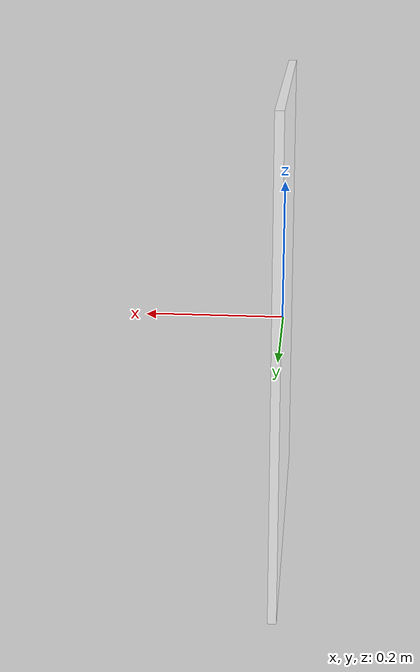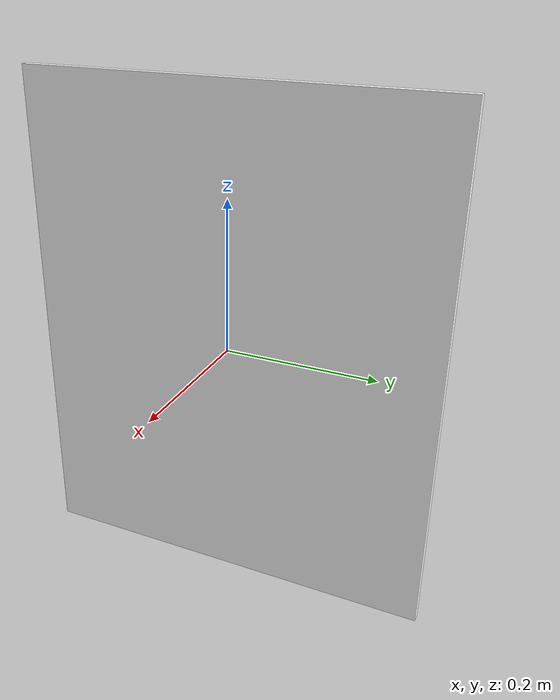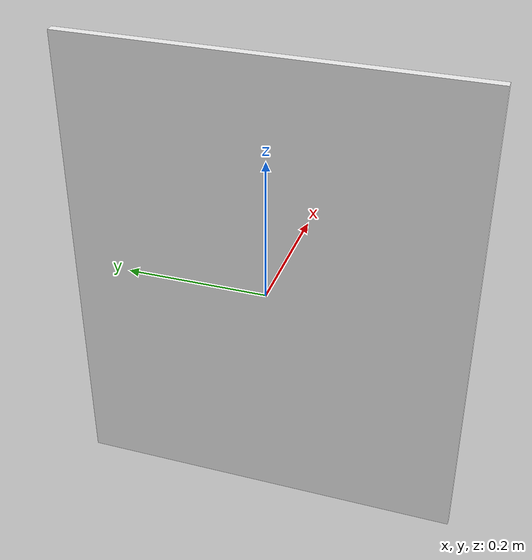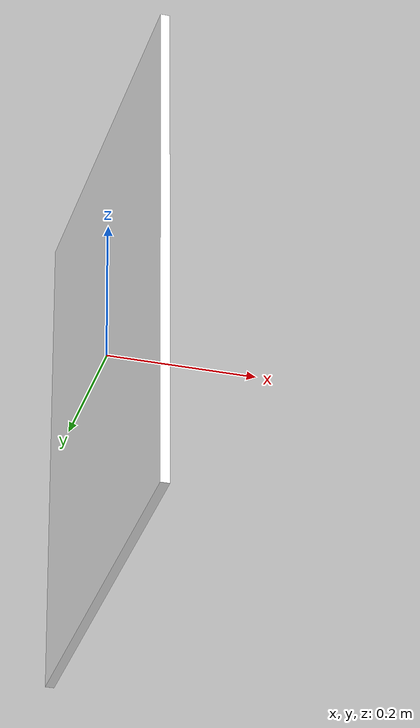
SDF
<?xml version="1.0"?>
<sdf version="1.8">
  <model name="cabin_wall">
    <static>true</static>
    <link name="wall_link">
      <visual name="wall_visual">
        <geometry><box><size>0.012 0.560 0.680</size></box></geometry>
        <material>
          <ambient>1 1 1 1</ambient>
          <diffuse>1 1 1 1</diffuse>
          <specular>0.14 0.14 0.14 1</specular>
          <pbr><metal><albedo_map>model://cabin_wall/textures/wall_marble.png</albedo_map><metalness>0.05</metalness><roughness>0.35</roughness></metal></pbr>
        </material>
      </visual>
    </link>
  </model>
</sdf>
